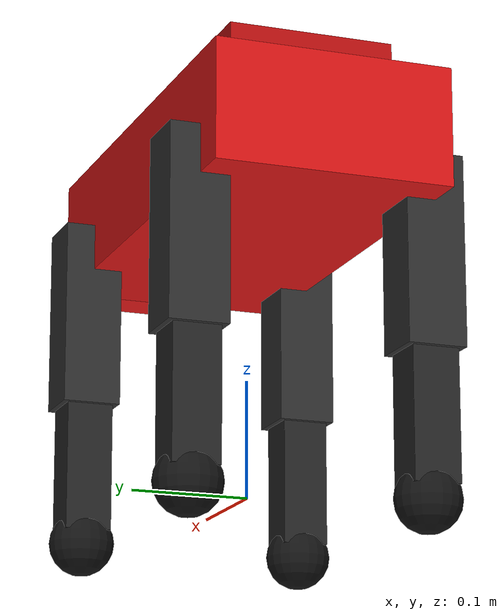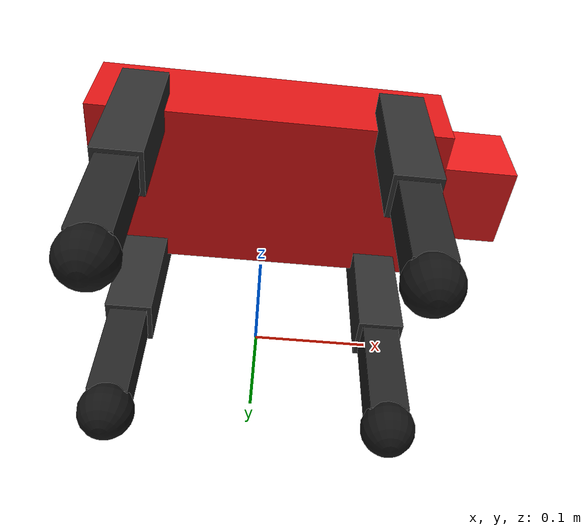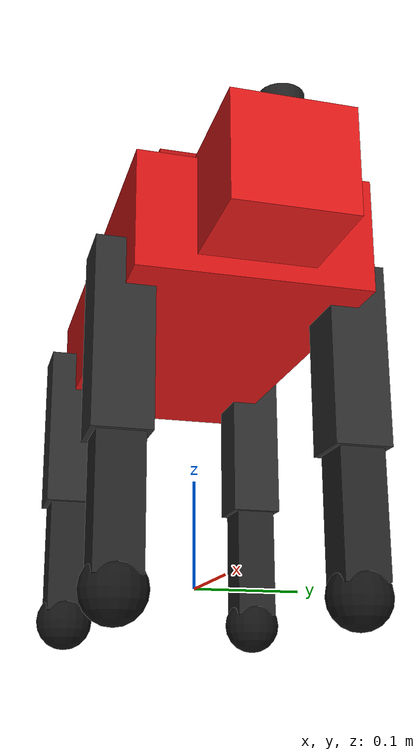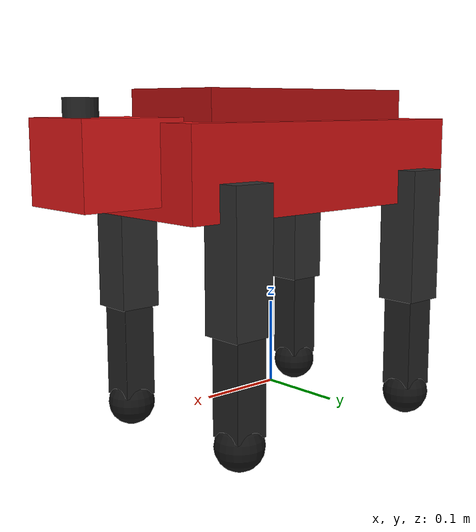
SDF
<?xml version="1.0"?>
<sdf version="1.6">
  <model name="target_bot">
    <static>false</static>

    <link name="base_link">
      <pose>0 0 0.15 0 0 0</pose>
      <inertial>
        <mass>2.8</mass>
        <inertia>
          <ixx>0.10</ixx>
          <ixy>0.0</ixy>
          <ixz>0.0</ixz>
          <iyy>0.09</iyy>
          <iyz>0.0</iyz>
          <izz>0.13</izz>
        </inertia>
      </inertial>

      <collision name="body_collision">
        <pose>0 0 0.02 0 0 0</pose>
        <geometry>
          <box>
            <size>0.44 0.26 0.24</size>
          </box>
        </geometry>
      </collision>

      <visual name="torso">
        <pose>0 0 0.12 0 0 0</pose>
        <geometry>
          <box>
            <size>0.40 0.20 0.10</size>
          </box>
        </geometry>
        <material>
          <ambient>0.70 0.04 0.04 1.0</ambient>
          <diffuse>0.86 0.08 0.08 1.0</diffuse>
          <specular>0.06 0.06 0.06 1.0</specular>
        </material>
      </visual>

      <visual name="upper_spine">
        <pose>0 0 0.18 0 0 0</pose>
        <geometry>
          <box>
            <size>0.30 0.14 0.05</size>
          </box>
        </geometry>
        <material>
          <ambient>0.58 0.03 0.03 1.0</ambient>
          <diffuse>0.74 0.06 0.06 1.0</diffuse>
        </material>
      </visual>

      <visual name="head">
        <pose>0.23 0 0.13 0 0 0</pose>
        <geometry>
          <box>
            <size>0.12 0.10 0.09</size>
          </box>
        </geometry>
        <material>
          <ambient>0.74 0.06 0.06 1.0</ambient>
          <diffuse>0.90 0.10 0.10 1.0</diffuse>
        </material>
      </visual>

      <visual name="sensor_cap">
        <pose>0.26 0 0.18 0 0 0</pose>
        <geometry>
          <cylinder>
            <radius>0.018</radius>
            <length>0.03</length>
          </cylinder>
        </geometry>
        <material>
          <ambient>0.10 0.10 0.10 1.0</ambient>
          <diffuse>0.14 0.14 0.14 1.0</diffuse>
        </material>
      </visual>

      <visual name="leg_fl_upper">
        <pose>0.14 0.10 0.03 0 0 0</pose>
        <geometry>
          <box>
            <size>0.05 0.05 0.16</size>
          </box>
        </geometry>
        <material>
          <ambient>0.10 0.10 0.10 1.0</ambient>
          <diffuse>0.18 0.18 0.18 1.0</diffuse>
        </material>
      </visual>
      <visual name="leg_fl_lower">
        <pose>0.14 0.10 -0.10 0 0 0</pose>
        <geometry>
          <box>
            <size>0.04 0.04 0.12</size>
          </box>
        </geometry>
        <material>
          <ambient>0.08 0.08 0.08 1.0</ambient>
          <diffuse>0.14 0.14 0.14 1.0</diffuse>
        </material>
      </visual>

      <visual name="leg_fr_upper">
        <pose>0.14 -0.10 0.03 0 0 0</pose>
        <geometry>
          <box>
            <size>0.05 0.05 0.16</size>
          </box>
        </geometry>
        <material>
          <ambient>0.10 0.10 0.10 1.0</ambient>
          <diffuse>0.18 0.18 0.18 1.0</diffuse>
        </material>
      </visual>
      <visual name="leg_fr_lower">
        <pose>0.14 -0.10 -0.10 0 0 0</pose>
        <geometry>
          <box>
            <size>0.04 0.04 0.12</size>
          </box>
        </geometry>
        <material>
          <ambient>0.08 0.08 0.08 1.0</ambient>
          <diffuse>0.14 0.14 0.14 1.0</diffuse>
        </material>
      </visual>

      <visual name="leg_rl_upper">
        <pose>-0.14 0.10 0.03 0 0 0</pose>
        <geometry>
          <box>
            <size>0.05 0.05 0.16</size>
          </box>
        </geometry>
        <material>
          <ambient>0.10 0.10 0.10 1.0</ambient>
          <diffuse>0.18 0.18 0.18 1.0</diffuse>
        </material>
      </visual>
      <visual name="leg_rl_lower">
        <pose>-0.14 0.10 -0.10 0 0 0</pose>
        <geometry>
          <box>
            <size>0.04 0.04 0.12</size>
          </box>
        </geometry>
        <material>
          <ambient>0.08 0.08 0.08 1.0</ambient>
          <diffuse>0.14 0.14 0.14 1.0</diffuse>
        </material>
      </visual>

      <visual name="leg_rr_upper">
        <pose>-0.14 -0.10 0.03 0 0 0</pose>
        <geometry>
          <box>
            <size>0.05 0.05 0.16</size>
          </box>
        </geometry>
        <material>
          <ambient>0.10 0.10 0.10 1.0</ambient>
          <diffuse>0.18 0.18 0.18 1.0</diffuse>
        </material>
      </visual>
      <visual name="leg_rr_lower">
        <pose>-0.14 -0.10 -0.10 0 0 0</pose>
        <geometry>
          <box>
            <size>0.04 0.04 0.12</size>
          </box>
        </geometry>
        <material>
          <ambient>0.08 0.08 0.08 1.0</ambient>
          <diffuse>0.14 0.14 0.14 1.0</diffuse>
        </material>
      </visual>

      <visual name="foot_fl">
        <pose>0.14 0.10 -0.17 0 0 0</pose>
        <geometry>
          <sphere>
            <radius>0.028</radius>
          </sphere>
        </geometry>
        <material>
          <ambient>0.03 0.03 0.03 1.0</ambient>
          <diffuse>0.08 0.08 0.08 1.0</diffuse>
        </material>
      </visual>
      <visual name="foot_fr">
        <pose>0.14 -0.10 -0.17 0 0 0</pose>
        <geometry>
          <sphere>
            <radius>0.028</radius>
          </sphere>
        </geometry>
        <material>
          <ambient>0.03 0.03 0.03 1.0</ambient>
          <diffuse>0.08 0.08 0.08 1.0</diffuse>
        </material>
      </visual>
      <visual name="foot_rl">
        <pose>-0.14 0.10 -0.17 0 0 0</pose>
        <geometry>
          <sphere>
            <radius>0.028</radius>
          </sphere>
        </geometry>
        <material>
          <ambient>0.03 0.03 0.03 1.0</ambient>
          <diffuse>0.08 0.08 0.08 1.0</diffuse>
        </material>
      </visual>
      <visual name="foot_rr">
        <pose>-0.14 -0.10 -0.17 0 0 0</pose>
        <geometry>
          <sphere>
            <radius>0.028</radius>
          </sphere>
        </geometry>
        <material>
          <ambient>0.03 0.03 0.03 1.0</ambient>
          <diffuse>0.08 0.08 0.08 1.0</diffuse>
        </material>
      </visual>
    </link>
  </model>
</sdf>
